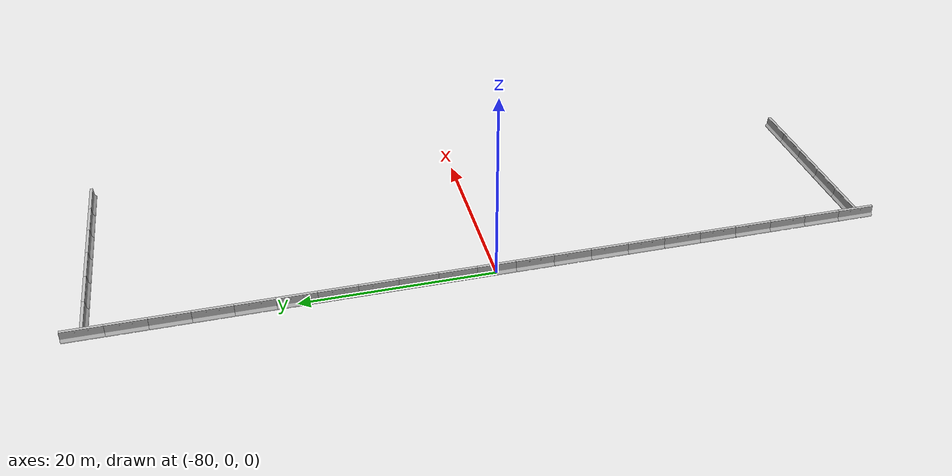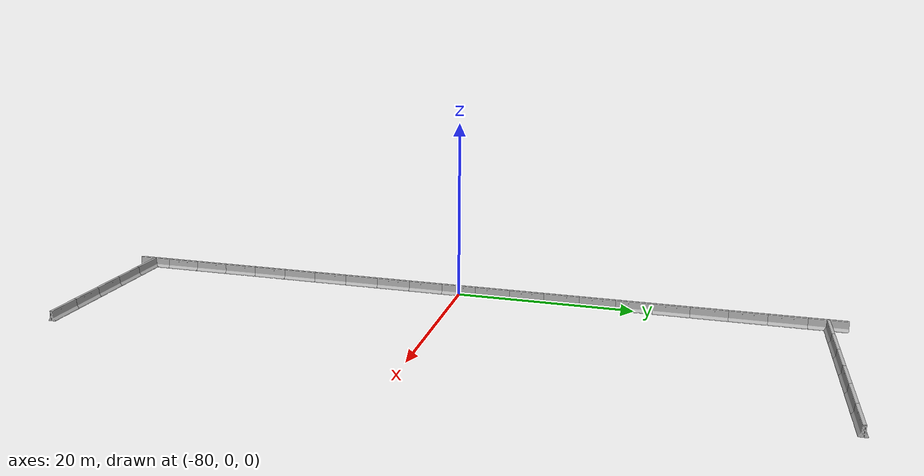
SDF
<sdf version="1.4">
 <world name="default">
  <include><uri>model://sun</uri></include>
  <model name="jersey_barrier_44">
   <pose>-58 40 0 0 0 0</pose>
   <static>1</static>
   <link name="link">
    <visual name="visual">
     <geometry><mesh><uri>model://jersey_barrier/meshes/jersey_barrier.dae</uri></mesh></geometry>
    </visual>
    <collision name="upright">
     <pose>0 0 0.5715 0 -0 0</pose>
     <geometry><box><size>4.06542 0.3063 1.143</size></box></geometry>
    </collision>
    <collision name="base">
     <pose>0 0 0.032258 0 -0 0</pose>
     <geometry><box><size>4.06542 0.8107 0.064516</size></box></geometry>
    </collision>
    <collision name="base2">
     <pose>0 0 0.1 0 -0 0</pose>
     <geometry><box><size>4.06542 0.65 0.1</size></box></geometry>
    </collision>
    <collision name="base3">
     <pose>0 0 0.2 0 -0 0</pose>
     <geometry><box><size>4.06542 0.5 0.1</size></box></geometry>
    </collision>
    <collision name="left-angle">
     <pose>0 -0.224 0.2401 0.9 -0 0</pose>
     <geometry><box><size>4.06542 0.5 0.064516</size></box></geometry>
    </collision>
    <collision name="right-angle">
     <pose>0 0.224 0.2401 -0.9 0 0</pose>
     <geometry><box><size>4.06542 0.5 0.064516</size></box></geometry>
    </collision>
    <velocity_decay><linear>0</linear><angular>0</angular></velocity_decay>
   </link>
   <pose>2.45495 0 0 0 -0 0</pose>
  </model>
  <model name="jersey_barrier_45">
   <pose>-62 40 0 0 0 0</pose>
   <static>1</static>
   <link name="link">
    <visual name="visual">
     <geometry><mesh><uri>model://jersey_barrier/meshes/jersey_barrier.dae</uri></mesh></geometry>
    </visual>
    <collision name="upright">
     <pose>0 0 0.5715 0 -0 0</pose>
     <geometry><box><size>4.06542 0.3063 1.143</size></box></geometry>
    </collision>
    <collision name="base">
     <pose>0 0 0.032258 0 -0 0</pose>
     <geometry><box><size>4.06542 0.8107 0.064516</size></box></geometry>
    </collision>
    <collision name="base2">
     <pose>0 0 0.1 0 -0 0</pose>
     <geometry><box><size>4.06542 0.65 0.1</size></box></geometry>
    </collision>
    <collision name="base3">
     <pose>0 0 0.2 0 -0 0</pose>
     <geometry><box><size>4.06542 0.5 0.1</size></box></geometry>
    </collision>
    <collision name="left-angle">
     <pose>0 -0.224 0.2401 0.9 -0 0</pose>
     <geometry><box><size>4.06542 0.5 0.064516</size></box></geometry>
    </collision>
    <collision name="right-angle">
     <pose>0 0.224 0.2401 -0.9 0 0</pose>
     <geometry><box><size>4.06542 0.5 0.064516</size></box></geometry>
    </collision>
    <velocity_decay><linear>0</linear><angular>0</angular></velocity_decay>
   </link>
   <pose>-10 -2 0 0 -0 0</pose>
  </model>
  <model name="jersey_barrier_46">
   <pose>-66 40 0 0 0 0</pose>
   <static>1</static>
   <link name="link">
    <visual name="visual">
     <geometry><mesh><uri>model://jersey_barrier/meshes/jersey_barrier.dae</uri></mesh></geometry>
    </visual>
    <collision name="upright">
     <pose>0 0 0.5715 0 -0 0</pose>
     <geometry><box><size>4.06542 0.3063 1.143</size></box></geometry>
    </collision>
    <collision name="base">
     <pose>0 0 0.032258 0 -0 0</pose>
     <geometry><box><size>4.06542 0.8107 0.064516</size></box></geometry>
    </collision>
    <collision name="base2">
     <pose>0 0 0.1 0 -0 0</pose>
     <geometry><box><size>4.06542 0.65 0.1</size></box></geometry>
    </collision>
    <collision name="base3">
     <pose>0 0 0.2 0 -0 0</pose>
     <geometry><box><size>4.06542 0.5 0.1</size></box></geometry>
    </collision>
    <collision name="left-angle">
     <pose>0 -0.224 0.2401 0.9 -0 0</pose>
     <geometry><box><size>4.06542 0.5 0.064516</size></box></geometry>
    </collision>
    <collision name="right-angle">
     <pose>0 0.224 0.2401 -0.9 0 0</pose>
     <geometry><box><size>4.06542 0.5 0.064516</size></box></geometry>
    </collision>
    <velocity_decay><linear>0</linear><angular>0</angular></velocity_decay>
   </link>
   <pose>-9.55113 3 0 0 -0 0</pose>
  </model>
  <model name="jersey_barrier_47">
   <pose>-70 40 0 0 0 0</pose>
   <static>1</static>
   <link name="link">
    <visual name="visual">
     <geometry><mesh><uri>model://jersey_barrier/meshes/jersey_barrier.dae</uri></mesh></geometry>
    </visual>
    <collision name="upright">
     <pose>0 0 0.5715 0 -0 0</pose>
     <geometry><box><size>4.06542 0.3063 1.143</size></box></geometry>
    </collision>
    <collision name="base">
     <pose>0 0 0.032258 0 -0 0</pose>
     <geometry><box><size>4.06542 0.8107 0.064516</size></box></geometry>
    </collision>
    <collision name="base2">
     <pose>0 0 0.1 0 -0 0</pose>
     <geometry><box><size>4.06542 0.65 0.1</size></box></geometry>
    </collision>
    <collision name="base3">
     <pose>0 0 0.2 0 -0 0</pose>
     <geometry><box><size>4.06542 0.5 0.1</size></box></geometry>
    </collision>
    <collision name="left-angle">
     <pose>0 -0.224 0.2401 0.9 -0 0</pose>
     <geometry><box><size>4.06542 0.5 0.064516</size></box></geometry>
    </collision>
    <collision name="right-angle">
     <pose>0 0.224 0.2401 -0.9 0 0</pose>
     <geometry><box><size>4.06542 0.5 0.064516</size></box></geometry>
    </collision>
    <velocity_decay><linear>0</linear><angular>0</angular></velocity_decay>
   </link>
   <pose>9 -8 0 0 -0 0</pose>
  </model>
  <model name="jersey_barrier_48">
   <pose>-74 40 0 0 0 0</pose>
   <static>1</static>
   <link name="link">
    <visual name="visual">
     <geometry><mesh><uri>model://jersey_barrier/meshes/jersey_barrier.dae</uri></mesh></geometry>
    </visual>
    <collision name="upright">
     <pose>0 0 0.5715 0 -0 0</pose>
     <geometry><box><size>4.06542 0.3063 1.143</size></box></geometry>
    </collision>
    <collision name="base">
     <pose>0 0 0.032258 0 -0 0</pose>
     <geometry><box><size>4.06542 0.8107 0.064516</size></box></geometry>
    </collision>
    <collision name="base2">
     <pose>0 0 0.1 0 -0 0</pose>
     <geometry><box><size>4.06542 0.65 0.1</size></box></geometry>
    </collision>
    <collision name="base3">
     <pose>0 0 0.2 0 -0 0</pose>
     <geometry><box><size>4.06542 0.5 0.1</size></box></geometry>
    </collision>
    <collision name="left-angle">
     <pose>0 -0.224 0.2401 0.9 -0 0</pose>
     <geometry><box><size>4.06542 0.5 0.064516</size></box></geometry>
    </collision>
    <collision name="right-angle">
     <pose>0 0.224 0.2401 -0.9 0 0</pose>
     <geometry><box><size>4.06542 0.5 0.064516</size></box></geometry>
    </collision>
    <velocity_decay><linear>0</linear><angular>0</angular></velocity_decay>
   </link>
   <pose>10 7 0 0 -0 0</pose>
  </model>
  <model name="jersey_barrier_49">
   <pose>-78 40 0 0 0 0</pose>
   <static>1</static>
   <link name="link">
    <visual name="visual">
     <geometry><mesh><uri>model://jersey_barrier/meshes/jersey_barrier.dae</uri></mesh></geometry>
    </visual>
    <collision name="upright">
     <pose>0 0 0.5715 0 -0 0</pose>
     <geometry><box><size>4.06542 0.3063 1.143</size></box></geometry>
    </collision>
    <collision name="base">
     <pose>0 0 0.032258 0 -0 0</pose>
     <geometry><box><size>4.06542 0.8107 0.064516</size></box></geometry>
    </collision>
    <collision name="base2">
     <pose>0 0 0.1 0 -0 0</pose>
     <geometry><box><size>4.06542 0.65 0.1</size></box></geometry>
    </collision>
    <collision name="base3">
     <pose>0 0 0.2 0 -0 0</pose>
     <geometry><box><size>4.06542 0.5 0.1</size></box></geometry>
    </collision>
    <collision name="left-angle">
     <pose>0 -0.224 0.2401 0.9 -0 0</pose>
     <geometry><box><size>4.06542 0.5 0.064516</size></box></geometry>
    </collision>
    <collision name="right-angle">
     <pose>0 0.224 0.2401 -0.9 0 0</pose>
     <geometry><box><size>4.06542 0.5 0.064516</size></box></geometry>
    </collision>
    <velocity_decay><linear>0</linear><angular>0</angular></velocity_decay>
   </link>
   <pose>-9 7.4858 0 0 -0 0</pose>
  </model>
  <model name="jersey_barrier_50">
   <pose>-80 0 0 0 0 1.57079632679</pose>
   <static>1</static>
   <link name="link">
    <visual name="visual">
     <geometry><mesh><uri>model://jersey_barrier/meshes/jersey_barrier.dae</uri></mesh></geometry>
    </visual>
    <collision name="upright">
     <pose>0 0 0.5715 0 -0 0</pose>
     <geometry><box><size>4.06542 0.3063 1.143</size></box></geometry>
    </collision>
    <collision name="base">
     <pose>0 0 0.032258 0 -0 0</pose>
     <geometry><box><size>4.06542 0.8107 0.064516</size></box></geometry>
    </collision>
    <collision name="base2">
     <pose>0 0 0.1 0 -0 0</pose>
     <geometry><box><size>4.06542 0.65 0.1</size></box></geometry>
    </collision>
    <collision name="base3">
     <pose>0 0 0.2 0 -0 0</pose>
     <geometry><box><size>4.06542 0.5 0.1</size></box></geometry>
    </collision>
    <collision name="left-angle">
     <pose>0 -0.224 0.2401 0.9 -0 0</pose>
     <geometry><box><size>4.06542 0.5 0.064516</size></box></geometry>
    </collision>
    <collision name="right-angle">
     <pose>0 0.224 0.2401 -0.9 0 0</pose>
     <geometry><box><size>4.06542 0.5 0.064516</size></box></geometry>
    </collision>
    <velocity_decay><linear>0</linear><angular>0</angular></velocity_decay>
   </link>
   <pose>-8 -10 0 0 -0 0</pose>
  </model>
  <model name="jersey_barrier_51">
   <pose>-80 4 0 0 0 1.57079632679</pose>
   <static>1</static>
   <link name="link">
    <visual name="visual">
     <geometry><mesh><uri>model://jersey_barrier/meshes/jersey_barrier.dae</uri></mesh></geometry>
    </visual>
    <collision name="upright">
     <pose>0 0 0.5715 0 -0 0</pose>
     <geometry><box><size>4.06542 0.3063 1.143</size></box></geometry>
    </collision>
    <collision name="base">
     <pose>0 0 0.032258 0 -0 0</pose>
     <geometry><box><size>4.06542 0.8107 0.064516</size></box></geometry>
    </collision>
    <collision name="base2">
     <pose>0 0 0.1 0 -0 0</pose>
     <geometry><box><size>4.06542 0.65 0.1</size></box></geometry>
    </collision>
    <collision name="base3">
     <pose>0 0 0.2 0 -0 0</pose>
     <geometry><box><size>4.06542 0.5 0.1</size></box></geometry>
    </collision>
    <collision name="left-angle">
     <pose>0 -0.224 0.2401 0.9 -0 0</pose>
     <geometry><box><size>4.06542 0.5 0.064516</size></box></geometry>
    </collision>
    <collision name="right-angle">
     <pose>0 0.224 0.2401 -0.9 0 0</pose>
     <geometry><box><size>4.06542 0.5 0.064516</size></box></geometry>
    </collision>
    <velocity_decay><linear>0</linear><angular>0</angular></velocity_decay>
   </link>
   <pose>-3 -10 0 0 -0 0</pose>
  </model>
  <model name="jersey_barrier_52">
   <pose>-80 8 0 0 0 1.57079632679</pose>
   <static>1</static>
   <link name="link">
    <visual name="visual">
     <geometry><mesh><uri>model://jersey_barrier/meshes/jersey_barrier.dae</uri></mesh></geometry>
    </visual>
    <collision name="upright">
     <pose>0 0 0.5715 0 -0 0</pose>
     <geometry><box><size>4.06542 0.3063 1.143</size></box></geometry>
    </collision>
    <collision name="base">
     <pose>0 0 0.032258 0 -0 0</pose>
     <geometry><box><size>4.06542 0.8107 0.064516</size></box></geometry>
    </collision>
    <collision name="base2">
     <pose>0 0 0.1 0 -0 0</pose>
     <geometry><box><size>4.06542 0.65 0.1</size></box></geometry>
    </collision>
    <collision name="base3">
     <pose>0 0 0.2 0 -0 0</pose>
     <geometry><box><size>4.06542 0.5 0.1</size></box></geometry>
    </collision>
    <collision name="left-angle">
     <pose>0 -0.224 0.2401 0.9 -0 0</pose>
     <geometry><box><size>4.06542 0.5 0.064516</size></box></geometry>
    </collision>
    <collision name="right-angle">
     <pose>0 0.224 0.2401 -0.9 0 0</pose>
     <geometry><box><size>4.06542 0.5 0.064516</size></box></geometry>
    </collision>
    <velocity_decay><linear>0</linear><angular>0</angular></velocity_decay>
   </link>
   <pose>2 -10 0 0 -0 0</pose>
  </model>
  <model name="jersey_barrier_53">
   <pose>-80 12 0 0 0 1.57079632679</pose>
   <static>1</static>
   <link name="link">
    <visual name="visual">
     <geometry><mesh><uri>model://jersey_barrier/meshes/jersey_barrier.dae</uri></mesh></geometry>
    </visual>
    <collision name="upright">
     <pose>0 0 0.5715 0 -0 0</pose>
     <geometry><box><size>4.06542 0.3063 1.143</size></box></geometry>
    </collision>
    <collision name="base">
     <pose>0 0 0.032258 0 -0 0</pose>
     <geometry><box><size>4.06542 0.8107 0.064516</size></box></geometry>
    </collision>
    <collision name="base2">
     <pose>0 0 0.1 0 -0 0</pose>
     <geometry><box><size>4.06542 0.65 0.1</size></box></geometry>
    </collision>
    <collision name="base3">
     <pose>0 0 0.2 0 -0 0</pose>
     <geometry><box><size>4.06542 0.5 0.1</size></box></geometry>
    </collision>
    <collision name="left-angle">
     <pose>0 -0.224 0.2401 0.9 -0 0</pose>
     <geometry><box><size>4.06542 0.5 0.064516</size></box></geometry>
    </collision>
    <collision name="right-angle">
     <pose>0 0.224 0.2401 -0.9 0 0</pose>
     <geometry><box><size>4.06542 0.5 0.064516</size></box></geometry>
    </collision>
    <velocity_decay><linear>0</linear><angular>0</angular></velocity_decay>
   </link>
   <pose>7 -10 0 0 -0 0</pose>
  </model>
  <model name="jersey_barrier_54">
   <pose>-80 16 0 0 0 1.57079632679</pose>
   <static>1</static>
   <link name="link">
    <visual name="visual">
     <geometry><mesh><uri>model://jersey_barrier/meshes/jersey_barrier.dae</uri></mesh></geometry>
    </visual>
    <collision name="upright">
     <pose>0 0 0.5715 0 -0 0</pose>
     <geometry><box><size>4.06542 0.3063 1.143</size></box></geometry>
    </collision>
    <collision name="base">
     <pose>0 0 0.032258 0 -0 0</pose>
     <geometry><box><size>4.06542 0.8107 0.064516</size></box></geometry>
    </collision>
    <collision name="base2">
     <pose>0 0 0.1 0 -0 0</pose>
     <geometry><box><size>4.06542 0.65 0.1</size></box></geometry>
    </collision>
    <collision name="base3">
     <pose>0 0 0.2 0 -0 0</pose>
     <geometry><box><size>4.06542 0.5 0.1</size></box></geometry>
    </collision>
    <collision name="left-angle">
     <pose>0 -0.224 0.2401 0.9 -0 0</pose>
     <geometry><box><size>4.06542 0.5 0.064516</size></box></geometry>
    </collision>
    <collision name="right-angle">
     <pose>0 0.224 0.2401 -0.9 0 0</pose>
     <geometry><box><size>4.06542 0.5 0.064516</size></box></geometry>
    </collision>
    <velocity_decay><linear>0</linear><angular>0</angular></velocity_decay>
   </link>
   <pose>-7.50675 10 0 0 -0 0</pose>
  </model>
  <model name="jersey_barrier_55">
   <pose>-80 20 0 0 0 1.57079632679</pose>
   <static>1</static>
   <link name="link">
    <visual name="visual">
     <geometry><mesh><uri>model://jersey_barrier/meshes/jersey_barrier.dae</uri></mesh></geometry>
    </visual>
    <collision name="upright">
     <pose>0 0 0.5715 0 -0 0</pose>
     <geometry><box><size>4.06542 0.3063 1.143</size></box></geometry>
    </collision>
    <collision name="base">
     <pose>0 0 0.032258 0 -0 0</pose>
     <geometry><box><size>4.06542 0.8107 0.064516</size></box></geometry>
    </collision>
    <collision name="base2">
     <pose>0 0 0.1 0 -0 0</pose>
     <geometry><box><size>4.06542 0.65 0.1</size></box></geometry>
    </collision>
    <collision name="base3">
     <pose>0 0 0.2 0 -0 0</pose>
     <geometry><box><size>4.06542 0.5 0.1</size></box></geometry>
    </collision>
    <collision name="left-angle">
     <pose>0 -0.224 0.2401 0.9 -0 0</pose>
     <geometry><box><size>4.06542 0.5 0.064516</size></box></geometry>
    </collision>
    <collision name="right-angle">
     <pose>0 0.224 0.2401 -0.9 0 0</pose>
     <geometry><box><size>4.06542 0.5 0.064516</size></box></geometry>
    </collision>
    <velocity_decay><linear>0</linear><angular>0</angular></velocity_decay>
   </link>
   <pose>-2 10 0 0 -0 0</pose>
  </model>
  <model name="jersey_barrier_56">
   <pose>-80 24 0 0 0 1.57079632679</pose>
   <static>1</static>
   <link name="link">
    <visual name="visual">
     <geometry><mesh><uri>model://jersey_barrier/meshes/jersey_barrier.dae</uri></mesh></geometry>
    </visual>
    <collision name="upright">
     <pose>0 0 0.5715 0 -0 0</pose>
     <geometry><box><size>4.06542 0.3063 1.143</size></box></geometry>
    </collision>
    <collision name="base">
     <pose>0 0 0.032258 0 -0 0</pose>
     <geometry><box><size>4.06542 0.8107 0.064516</size></box></geometry>
    </collision>
    <collision name="base2">
     <pose>0 0 0.1 0 -0 0</pose>
     <geometry><box><size>4.06542 0.65 0.1</size></box></geometry>
    </collision>
    <collision name="base3">
     <pose>0 0 0.2 0 -0 0</pose>
     <geometry><box><size>4.06542 0.5 0.1</size></box></geometry>
    </collision>
    <collision name="left-angle">
     <pose>0 -0.224 0.2401 0.9 -0 0</pose>
     <geometry><box><size>4.06542 0.5 0.064516</size></box></geometry>
    </collision>
    <collision name="right-angle">
     <pose>0 0.224 0.2401 -0.9 0 0</pose>
     <geometry><box><size>4.06542 0.5 0.064516</size></box></geometry>
    </collision>
    <velocity_decay><linear>0</linear><angular>0</angular></velocity_decay>
   </link>
   <pose>3 10 0 0 -0 0</pose>
  </model>
  <model name="jersey_barrier_57">
   <pose>-80 28 0 0 0 1.57079632679</pose>
   <static>1</static>
   <link name="link">
    <visual name="visual">
     <geometry><mesh><uri>model://jersey_barrier/meshes/jersey_barrier.dae</uri></mesh></geometry>
    </visual>
    <collision name="upright">
     <pose>0 0 0.5715 0 -0 0</pose>
     <geometry><box><size>4.06542 0.3063 1.143</size></box></geometry>
    </collision>
    <collision name="base">
     <pose>0 0 0.032258 0 -0 0</pose>
     <geometry><box><size>4.06542 0.8107 0.064516</size></box></geometry>
    </collision>
    <collision name="base2">
     <pose>0 0 0.1 0 -0 0</pose>
     <geometry><box><size>4.06542 0.65 0.1</size></box></geometry>
    </collision>
    <collision name="base3">
     <pose>0 0 0.2 0 -0 0</pose>
     <geometry><box><size>4.06542 0.5 0.1</size></box></geometry>
    </collision>
    <collision name="left-angle">
     <pose>0 -0.224 0.2401 0.9 -0 0</pose>
     <geometry><box><size>4.06542 0.5 0.064516</size></box></geometry>
    </collision>
    <collision name="right-angle">
     <pose>0 0.224 0.2401 -0.9 0 0</pose>
     <geometry><box><size>4.06542 0.5 0.064516</size></box></geometry>
    </collision>
    <velocity_decay><linear>0</linear><angular>0</angular></velocity_decay>
   </link>
   <pose>8 10 0 0 -0 0</pose>
  </model>
  <model name="jersey_barrier_58">
   <pose>-80 32 0 0 0 1.57079632679</pose>
   <static>1</static>
   <link name="link">
    <visual name="visual">
     <geometry><mesh><uri>model://jersey_barrier/meshes/jersey_barrier.dae</uri></mesh></geometry>
    </visual>
    <collision name="upright">
     <pose>0 0 0.5715 0 -0 0</pose>
     <geometry><box><size>4.06542 0.3063 1.143</size></box></geometry>
    </collision>
    <collision name="base">
     <pose>0 0 0.032258 0 -0 0</pose>
     <geometry><box><size>4.06542 0.8107 0.064516</size></box></geometry>
    </collision>
    <collision name="base2">
     <pose>0 0 0.1 0 -0 0</pose>
     <geometry><box><size>4.06542 0.65 0.1</size></box></geometry>
    </collision>
    <collision name="base3">
     <pose>0 0 0.2 0 -0 0</pose>
     <geometry><box><size>4.06542 0.5 0.1</size></box></geometry>
    </collision>
    <collision name="left-angle">
     <pose>0 -0.224 0.2401 0.9 -0 0</pose>
     <geometry><box><size>4.06542 0.5 0.064516</size></box></geometry>
    </collision>
    <collision name="right-angle">
     <pose>0 0.224 0.2401 -0.9 0 0</pose>
     <geometry><box><size>4.06542 0.5 0.064516</size></box></geometry>
    </collision>
    <velocity_decay><linear>0</linear><angular>0</angular></velocity_decay>
   </link>
   <pose>9 -4 0 0 -0 0</pose>
  </model>
  <model name="jersey_barrier_59">
   <pose>-80 36 0 0 0 1.57079632679</pose>
   <static>1</static>
   <link name="link">
    <visual name="visual">
     <geometry><mesh><uri>model://jersey_barrier/meshes/jersey_barrier.dae</uri></mesh></geometry>
    </visual>
    <collision name="upright">
     <pose>0 0 0.5715 0 -0 0</pose>
     <geometry><box><size>4.06542 0.3063 1.143</size></box></geometry>
    </collision>
    <collision name="base">
     <pose>0 0 0.032258 0 -0 0</pose>
     <geometry><box><size>4.06542 0.8107 0.064516</size></box></geometry>
    </collision>
    <collision name="base2">
     <pose>0 0 0.1 0 -0 0</pose>
     <geometry><box><size>4.06542 0.65 0.1</size></box></geometry>
    </collision>
    <collision name="base3">
     <pose>0 0 0.2 0 -0 0</pose>
     <geometry><box><size>4.06542 0.5 0.1</size></box></geometry>
    </collision>
    <collision name="left-angle">
     <pose>0 -0.224 0.2401 0.9 -0 0</pose>
     <geometry><box><size>4.06542 0.5 0.064516</size></box></geometry>
    </collision>
    <collision name="right-angle">
     <pose>0 0.224 0.2401 -0.9 0 0</pose>
     <geometry><box><size>4.06542 0.5 0.064516</size></box></geometry>
    </collision>
    <velocity_decay><linear>0</linear><angular>0</angular></velocity_decay>
   </link>
   <pose>9 3 0 0 -0 0</pose>
  </model>
  <model name="jersey_barrier_60">
   <pose>-80 40 0 0 0 1.57079632679</pose>
   <static>1</static>
   <link name="link">
    <visual name="visual">
     <geometry><mesh><uri>model://jersey_barrier/meshes/jersey_barrier.dae</uri></mesh></geometry>
    </visual>
    <collision name="upright">
     <pose>0 0 0.5715 0 -0 0</pose>
     <geometry><box><size>4.06542 0.3063 1.143</size></box></geometry>
    </collision>
    <collision name="base">
     <pose>0 0 0.032258 0 -0 0</pose>
     <geometry><box><size>4.06542 0.8107 0.064516</size></box></geometry>
    </collision>
    <collision name="base2">
     <pose>0 0 0.1 0 -0 0</pose>
     <geometry><box><size>4.06542 0.65 0.1</size></box></geometry>
    </collision>
    <collision name="base3">
     <pose>0 0 0.2 0 -0 0</pose>
     <geometry><box><size>4.06542 0.5 0.1</size></box></geometry>
    </collision>
    <collision name="left-angle">
     <pose>0 -0.224 0.2401 0.9 -0 0</pose>
     <geometry><box><size>4.06542 0.5 0.064516</size></box></geometry>
    </collision>
    <collision name="right-angle">
     <pose>0 0.224 0.2401 -0.9 0 0</pose>
     <geometry><box><size>4.06542 0.5 0.064516</size></box></geometry>
    </collision>
    <velocity_decay><linear>0</linear><angular>0</angular></velocity_decay>
   </link>
   <pose>-9 -6.56962 0 0 -0 0</pose>
  </model>
  <model name="jersey_barrier_61">
   <pose>-80 -4 0 0 0 1.57079632679</pose>
   <static>1</static>
   <link name="link">
    <visual name="visual">
     <geometry><mesh><uri>model://jersey_barrier/meshes/jersey_barrier.dae</uri></mesh></geometry>
    </visual>
    <collision name="upright">
     <pose>0 0 0.5715 0 -0 0</pose>
     <geometry><box><size>4.06542 0.3063 1.143</size></box></geometry>
    </collision>
    <collision name="base">
     <pose>0 0 0.032258 0 -0 0</pose>
     <geometry><box><size>4.06542 0.8107 0.064516</size></box></geometry>
    </collision>
    <collision name="base2">
     <pose>0 0 0.1 0 -0 0</pose>
     <geometry><box><size>4.06542 0.65 0.1</size></box></geometry>
    </collision>
    <collision name="base3">
     <pose>0 0 0.2 0 -0 0</pose>
     <geometry><box><size>4.06542 0.5 0.1</size></box></geometry>
    </collision>
    <collision name="left-angle">
     <pose>0 -0.224 0.2401 0.9 -0 0</pose>
     <geometry><box><size>4.06542 0.5 0.064516</size></box></geometry>
    </collision>
    <collision name="right-angle">
     <pose>0 0.224 0.2401 -0.9 0 0</pose>
     <geometry><box><size>4.06542 0.5 0.064516</size></box></geometry>
    </collision>
    <velocity_decay><linear>0</linear><angular>0</angular></velocity_decay>
   </link>
   <pose>-3 -10 0 0 -0 0</pose>
  </model>
  <model name="jersey_barrier_62">
   <pose>-80 -8 0 0 0 1.57079632679</pose>
   <static>1</static>
   <link name="link">
    <visual name="visual">
     <geometry><mesh><uri>model://jersey_barrier/meshes/jersey_barrier.dae</uri></mesh></geometry>
    </visual>
    <collision name="upright">
     <pose>0 0 0.5715 0 -0 0</pose>
     <geometry><box><size>4.06542 0.3063 1.143</size></box></geometry>
    </collision>
    <collision name="base">
     <pose>0 0 0.032258 0 -0 0</pose>
     <geometry><box><size>4.06542 0.8107 0.064516</size></box></geometry>
    </collision>
    <collision name="base2">
     <pose>0 0 0.1 0 -0 0</pose>
     <geometry><box><size>4.06542 0.65 0.1</size></box></geometry>
    </collision>
    <collision name="base3">
     <pose>0 0 0.2 0 -0 0</pose>
     <geometry><box><size>4.06542 0.5 0.1</size></box></geometry>
    </collision>
    <collision name="left-angle">
     <pose>0 -0.224 0.2401 0.9 -0 0</pose>
     <geometry><box><size>4.06542 0.5 0.064516</size></box></geometry>
    </collision>
    <collision name="right-angle">
     <pose>0 0.224 0.2401 -0.9 0 0</pose>
     <geometry><box><size>4.06542 0.5 0.064516</size></box></geometry>
    </collision>
    <velocity_decay><linear>0</linear><angular>0</angular></velocity_decay>
   </link>
   <pose>2 -10 0 0 -0 0</pose>
  </model>
  <model name="jersey_barrier_63">
   <pose>-80 -12 0 0 0 1.57079632679</pose>
   <static>1</static>
   <link name="link">
    <visual name="visual">
     <geometry><mesh><uri>model://jersey_barrier/meshes/jersey_barrier.dae</uri></mesh></geometry>
    </visual>
    <collision name="upright">
     <pose>0 0 0.5715 0 -0 0</pose>
     <geometry><box><size>4.06542 0.3063 1.143</size></box></geometry>
    </collision>
    <collision name="base">
     <pose>0 0 0.032258 0 -0 0</pose>
     <geometry><box><size>4.06542 0.8107 0.064516</size></box></geometry>
    </collision>
    <collision name="base2">
     <pose>0 0 0.1 0 -0 0</pose>
     <geometry><box><size>4.06542 0.65 0.1</size></box></geometry>
    </collision>
    <collision name="base3">
     <pose>0 0 0.2 0 -0 0</pose>
     <geometry><box><size>4.06542 0.5 0.1</size></box></geometry>
    </collision>
    <collision name="left-angle">
     <pose>0 -0.224 0.2401 0.9 -0 0</pose>
     <geometry><box><size>4.06542 0.5 0.064516</size></box></geometry>
    </collision>
    <collision name="right-angle">
     <pose>0 0.224 0.2401 -0.9 0 0</pose>
     <geometry><box><size>4.06542 0.5 0.064516</size></box></geometry>
    </collision>
    <velocity_decay><linear>0</linear><angular>0</angular></velocity_decay>
   </link>
   <pose>7 -10 0 0 -0 0</pose>
  </model>
  <model name="jersey_barrier_64">
   <pose>-80 -16 0 0 0 1.57079632679</pose>
   <static>1</static>
   <link name="link">
    <visual name="visual">
     <geometry><mesh><uri>model://jersey_barrier/meshes/jersey_barrier.dae</uri></mesh></geometry>
    </visual>
    <collision name="upright">
     <pose>0 0 0.5715 0 -0 0</pose>
     <geometry><box><size>4.06542 0.3063 1.143</size></box></geometry>
    </collision>
    <collision name="base">
     <pose>0 0 0.032258 0 -0 0</pose>
     <geometry><box><size>4.06542 0.8107 0.064516</size></box></geometry>
    </collision>
    <collision name="base2">
     <pose>0 0 0.1 0 -0 0</pose>
     <geometry><box><size>4.06542 0.65 0.1</size></box></geometry>
    </collision>
    <collision name="base3">
     <pose>0 0 0.2 0 -0 0</pose>
     <geometry><box><size>4.06542 0.5 0.1</size></box></geometry>
    </collision>
    <collision name="left-angle">
     <pose>0 -0.224 0.2401 0.9 -0 0</pose>
     <geometry><box><size>4.06542 0.5 0.064516</size></box></geometry>
    </collision>
    <collision name="right-angle">
     <pose>0 0.224 0.2401 -0.9 0 0</pose>
     <geometry><box><size>4.06542 0.5 0.064516</size></box></geometry>
    </collision>
    <velocity_decay><linear>0</linear><angular>0</angular></velocity_decay>
   </link>
   <pose>-7.50675 10 0 0 -0 0</pose>
  </model>
  <model name="jersey_barrier_65">
   <pose>-80 -20 0 0 0 1.57079632679</pose>
   <static>1</static>
   <link name="link">
    <visual name="visual">
     <geometry><mesh><uri>model://jersey_barrier/meshes/jersey_barrier.dae</uri></mesh></geometry>
    </visual>
    <collision name="upright">
     <pose>0 0 0.5715 0 -0 0</pose>
     <geometry><box><size>4.06542 0.3063 1.143</size></box></geometry>
    </collision>
    <collision name="base">
     <pose>0 0 0.032258 0 -0 0</pose>
     <geometry><box><size>4.06542 0.8107 0.064516</size></box></geometry>
    </collision>
    <collision name="base2">
     <pose>0 0 0.1 0 -0 0</pose>
     <geometry><box><size>4.06542 0.65 0.1</size></box></geometry>
    </collision>
    <collision name="base3">
     <pose>0 0 0.2 0 -0 0</pose>
     <geometry><box><size>4.06542 0.5 0.1</size></box></geometry>
    </collision>
    <collision name="left-angle">
     <pose>0 -0.224 0.2401 0.9 -0 0</pose>
     <geometry><box><size>4.06542 0.5 0.064516</size></box></geometry>
    </collision>
    <collision name="right-angle">
     <pose>0 0.224 0.2401 -0.9 0 0</pose>
     <geometry><box><size>4.06542 0.5 0.064516</size></box></geometry>
    </collision>
    <velocity_decay><linear>0</linear><angular>0</angular></velocity_decay>
   </link>
   <pose>-2 10 0 0 -0 0</pose>
  </model>
  <model name="jersey_barrier_66">
   <pose>-80 -24 0 0 0 1.57079632679</pose>
   <static>1</static>
   <link name="link">
    <visual name="visual">
     <geometry><mesh><uri>model://jersey_barrier/meshes/jersey_barrier.dae</uri></mesh></geometry>
    </visual>
    <collision name="upright">
     <pose>0 0 0.5715 0 -0 0</pose>
     <geometry><box><size>4.06542 0.3063 1.143</size></box></geometry>
    </collision>
    <collision name="base">
     <pose>0 0 0.032258 0 -0 0</pose>
     <geometry><box><size>4.06542 0.8107 0.064516</size></box></geometry>
    </collision>
    <collision name="base2">
     <pose>0 0 0.1 0 -0 0</pose>
     <geometry><box><size>4.06542 0.65 0.1</size></box></geometry>
    </collision>
    <collision name="base3">
     <pose>0 0 0.2 0 -0 0</pose>
     <geometry><box><size>4.06542 0.5 0.1</size></box></geometry>
    </collision>
    <collision name="left-angle">
     <pose>0 -0.224 0.2401 0.9 -0 0</pose>
     <geometry><box><size>4.06542 0.5 0.064516</size></box></geometry>
    </collision>
    <collision name="right-angle">
     <pose>0 0.224 0.2401 -0.9 0 0</pose>
     <geometry><box><size>4.06542 0.5 0.064516</size></box></geometry>
    </collision>
    <velocity_decay><linear>0</linear><angular>0</angular></velocity_decay>
   </link>
   <pose>3 10 0 0 -0 0</pose>
  </model>
  <model name="jersey_barrier_67">
   <pose>-80 -28 0 0 0 1.57079632679</pose>
   <static>1</static>
   <link name="link">
    <visual name="visual">
     <geometry><mesh><uri>model://jersey_barrier/meshes/jersey_barrier.dae</uri></mesh></geometry>
    </visual>
    <collision name="upright">
     <pose>0 0 0.5715 0 -0 0</pose>
     <geometry><box><size>4.06542 0.3063 1.143</size></box></geometry>
    </collision>
    <collision name="base">
     <pose>0 0 0.032258 0 -0 0</pose>
     <geometry><box><size>4.06542 0.8107 0.064516</size></box></geometry>
    </collision>
    <collision name="base2">
     <pose>0 0 0.1 0 -0 0</pose>
     <geometry><box><size>4.06542 0.65 0.1</size></box></geometry>
    </collision>
    <collision name="base3">
     <pose>0 0 0.2 0 -0 0</pose>
     <geometry><box><size>4.06542 0.5 0.1</size></box></geometry>
    </collision>
    <collision name="left-angle">
     <pose>0 -0.224 0.2401 0.9 -0 0</pose>
     <geometry><box><size>4.06542 0.5 0.064516</size></box></geometry>
    </collision>
    <collision name="right-angle">
     <pose>0 0.224 0.2401 -0.9 0 0</pose>
     <geometry><box><size>4.06542 0.5 0.064516</size></box></geometry>
    </collision>
    <velocity_decay><linear>0</linear><angular>0</angular></velocity_decay>
   </link>
   <pose>8 10 0 0 -0 0</pose>
  </model>
  <model name="jersey_barrier_68">
   <pose>-80 -32 0 0 0 1.57079632679</pose>
   <static>1</static>
   <link name="link">
    <visual name="visual">
     <geometry><mesh><uri>model://jersey_barrier/meshes/jersey_barrier.dae</uri></mesh></geometry>
    </visual>
    <collision name="upright">
     <pose>0 0 0.5715 0 -0 0</pose>
     <geometry><box><size>4.06542 0.3063 1.143</size></box></geometry>
    </collision>
    <collision name="base">
     <pose>0 0 0.032258 0 -0 0</pose>
     <geometry><box><size>4.06542 0.8107 0.064516</size></box></geometry>
    </collision>
    <collision name="base2">
     <pose>0 0 0.1 0 -0 0</pose>
     <geometry><box><size>4.06542 0.65 0.1</size></box></geometry>
    </collision>
    <collision name="base3">
     <pose>0 0 0.2 0 -0 0</pose>
     <geometry><box><size>4.06542 0.5 0.1</size></box></geometry>
    </collision>
    <collision name="left-angle">
     <pose>0 -0.224 0.2401 0.9 -0 0</pose>
     <geometry><box><size>4.06542 0.5 0.064516</size></box></geometry>
    </collision>
    <collision name="right-angle">
     <pose>0 0.224 0.2401 -0.9 0 0</pose>
     <geometry><box><size>4.06542 0.5 0.064516</size></box></geometry>
    </collision>
    <velocity_decay><linear>0</linear><angular>0</angular></velocity_decay>
   </link>
   <pose>9 -4 0 0 -0 0</pose>
  </model>
  <model name="jersey_barrier_69">
   <pose>-80 -36 0 0 0 1.57079632679</pose>
   <static>1</static>
   <link name="link">
    <visual name="visual">
     <geometry><mesh><uri>model://jersey_barrier/meshes/jersey_barrier.dae</uri></mesh></geometry>
    </visual>
    <collision name="upright">
     <pose>0 0 0.5715 0 -0 0</pose>
     <geometry><box><size>4.06542 0.3063 1.143</size></box></geometry>
    </collision>
    <collision name="base">
     <pose>0 0 0.032258 0 -0 0</pose>
     <geometry><box><size>4.06542 0.8107 0.064516</size></box></geometry>
    </collision>
    <collision name="base2">
     <pose>0 0 0.1 0 -0 0</pose>
     <geometry><box><size>4.06542 0.65 0.1</size></box></geometry>
    </collision>
    <collision name="base3">
     <pose>0 0 0.2 0 -0 0</pose>
     <geometry><box><size>4.06542 0.5 0.1</size></box></geometry>
    </collision>
    <collision name="left-angle">
     <pose>0 -0.224 0.2401 0.9 -0 0</pose>
     <geometry><box><size>4.06542 0.5 0.064516</size></box></geometry>
    </collision>
    <collision name="right-angle">
     <pose>0 0.224 0.2401 -0.9 0 0</pose>
     <geometry><box><size>4.06542 0.5 0.064516</size></box></geometry>
    </collision>
    <velocity_decay><linear>0</linear><angular>0</angular></velocity_decay>
   </link>
   <pose>9 3 0 0 -0 0</pose>
  </model>
  <model name="jersey_barrier_70">
   <pose>-80 -40 0 0 0 1.57079632679</pose>
   <static>1</static>
   <link name="link">
    <visual name="visual">
     <geometry><mesh><uri>model://jersey_barrier/meshes/jersey_barrier.dae</uri></mesh></geometry>
    </visual>
    <collision name="upright">
     <pose>0 0 0.5715 0 -0 0</pose>
     <geometry><box><size>4.06542 0.3063 1.143</size></box></geometry>
    </collision>
    <collision name="base">
     <pose>0 0 0.032258 0 -0 0</pose>
     <geometry><box><size>4.06542 0.8107 0.064516</size></box></geometry>
    </collision>
    <collision name="base2">
     <pose>0 0 0.1 0 -0 0</pose>
     <geometry><box><size>4.06542 0.65 0.1</size></box></geometry>
    </collision>
    <collision name="base3">
     <pose>0 0 0.2 0 -0 0</pose>
     <geometry><box><size>4.06542 0.5 0.1</size></box></geometry>
    </collision>
    <collision name="left-angle">
     <pose>0 -0.224 0.2401 0.9 -0 0</pose>
     <geometry><box><size>4.06542 0.5 0.064516</size></box></geometry>
    </collision>
    <collision name="right-angle">
     <pose>0 0.224 0.2401 -0.9 0 0</pose>
     <geometry><box><size>4.06542 0.5 0.064516</size></box></geometry>
    </collision>
    <velocity_decay><linear>0</linear><angular>0</angular></velocity_decay>
   </link>
   <pose>-9 -6.56962 0 0 -0 0</pose>
  </model>
  <model name="jersey_barrier_106">
   <pose>-62 -40 0 0 0 0</pose>
   <static>1</static>
   <link name="link">
    <visual name="visual">
     <geometry><mesh><uri>model://jersey_barrier/meshes/jersey_barrier.dae</uri></mesh></geometry>
    </visual>
    <collision name="upright">
     <pose>0 0 0.5715 0 -0 0</pose>
     <geometry><box><size>4.06542 0.3063 1.143</size></box></geometry>
    </collision>
    <collision name="base">
     <pose>0 0 0.032258 0 -0 0</pose>
     <geometry><box><size>4.06542 0.8107 0.064516</size></box></geometry>
    </collision>
    <collision name="base2">
     <pose>0 0 0.1 0 -0 0</pose>
     <geometry><box><size>4.06542 0.65 0.1</size></box></geometry>
    </collision>
    <collision name="base3">
     <pose>0 0 0.2 0 -0 0</pose>
     <geometry><box><size>4.06542 0.5 0.1</size></box></geometry>
    </collision>
    <collision name="left-angle">
     <pose>0 -0.224 0.2401 0.9 -0 0</pose>
     <geometry><box><size>4.06542 0.5 0.064516</size></box></geometry>
    </collision>
    <collision name="right-angle">
     <pose>0 0.224 0.2401 -0.9 0 0</pose>
     <geometry><box><size>4.06542 0.5 0.064516</size></box></geometry>
    </collision>
    <velocity_decay><linear>0</linear><angular>0</angular></velocity_decay>
   </link>
   <pose>-10 -2 0 0 -0 0</pose>
  </model>
  <model name="jersey_barrier_107">
   <pose>-66 -40 0 0 0 0</pose>
   <static>1</static>
   <link name="link">
    <visual name="visual">
     <geometry><mesh><uri>model://jersey_barrier/meshes/jersey_barrier.dae</uri></mesh></geometry>
    </visual>
    <collision name="upright">
     <pose>0 0 0.5715 0 -0 0</pose>
     <geometry><box><size>4.06542 0.3063 1.143</size></box></geometry>
    </collision>
    <collision name="base">
     <pose>0 0 0.032258 0 -0 0</pose>
     <geometry><box><size>4.06542 0.8107 0.064516</size></box></geometry>
    </collision>
    <collision name="base2">
     <pose>0 0 0.1 0 -0 0</pose>
     <geometry><box><size>4.06542 0.65 0.1</size></box></geometry>
    </collision>
    <collision name="base3">
     <pose>0 0 0.2 0 -0 0</pose>
     <geometry><box><size>4.06542 0.5 0.1</size></box></geometry>
    </collision>
    <collision name="left-angle">
     <pose>0 -0.224 0.2401 0.9 -0 0</pose>
     <geometry><box><size>4.06542 0.5 0.064516</size></box></geometry>
    </collision>
    <collision name="right-angle">
     <pose>0 0.224 0.2401 -0.9 0 0</pose>
     <geometry><box><size>4.06542 0.5 0.064516</size></box></geometry>
    </collision>
    <velocity_decay><linear>0</linear><angular>0</angular></velocity_decay>
   </link>
   <pose>-9.55113 3 0 0 -0 0</pose>
  </model>
  <model name="jersey_barrier_108">
   <pose>-70 -40 0 0 0 0</pose>
   <static>1</static>
   <link name="link">
    <visual name="visual">
     <geometry><mesh><uri>model://jersey_barrier/meshes/jersey_barrier.dae</uri></mesh></geometry>
    </visual>
    <collision name="upright">
     <pose>0 0 0.5715 0 -0 0</pose>
     <geometry><box><size>4.06542 0.3063 1.143</size></box></geometry>
    </collision>
    <collision name="base">
     <pose>0 0 0.032258 0 -0 0</pose>
     <geometry><box><size>4.06542 0.8107 0.064516</size></box></geometry>
    </collision>
    <collision name="base2">
     <pose>0 0 0.1 0 -0 0</pose>
     <geometry><box><size>4.06542 0.65 0.1</size></box></geometry>
    </collision>
    <collision name="base3">
     <pose>0 0 0.2 0 -0 0</pose>
     <geometry><box><size>4.06542 0.5 0.1</size></box></geometry>
    </collision>
    <collision name="left-angle">
     <pose>0 -0.224 0.2401 0.9 -0 0</pose>
     <geometry><box><size>4.06542 0.5 0.064516</size></box></geometry>
    </collision>
    <collision name="right-angle">
     <pose>0 0.224 0.2401 -0.9 0 0</pose>
     <geometry><box><size>4.06542 0.5 0.064516</size></box></geometry>
    </collision>
    <velocity_decay><linear>0</linear><angular>0</angular></velocity_decay>
   </link>
   <pose>9 -8 0 0 -0 0</pose>
  </model>
  <model name="jersey_barrier_109">
   <pose>-74 -40 0 0 0 0</pose>
   <static>1</static>
   <link name="link">
    <visual name="visual">
     <geometry><mesh><uri>model://jersey_barrier/meshes/jersey_barrier.dae</uri></mesh></geometry>
    </visual>
    <collision name="upright">
     <pose>0 0 0.5715 0 -0 0</pose>
     <geometry><box><size>4.06542 0.3063 1.143</size></box></geometry>
    </collision>
    <collision name="base">
     <pose>0 0 0.032258 0 -0 0</pose>
     <geometry><box><size>4.06542 0.8107 0.064516</size></box></geometry>
    </collision>
    <collision name="base2">
     <pose>0 0 0.1 0 -0 0</pose>
     <geometry><box><size>4.06542 0.65 0.1</size></box></geometry>
    </collision>
    <collision name="base3">
     <pose>0 0 0.2 0 -0 0</pose>
     <geometry><box><size>4.06542 0.5 0.1</size></box></geometry>
    </collision>
    <collision name="left-angle">
     <pose>0 -0.224 0.2401 0.9 -0 0</pose>
     <geometry><box><size>4.06542 0.5 0.064516</size></box></geometry>
    </collision>
    <collision name="right-angle">
     <pose>0 0.224 0.2401 -0.9 0 0</pose>
     <geometry><box><size>4.06542 0.5 0.064516</size></box></geometry>
    </collision>
    <velocity_decay><linear>0</linear><angular>0</angular></velocity_decay>
   </link>
   <pose>10 7 0 0 -0 0</pose>
  </model>
  <model name="jersey_barrier_110">
   <pose>-78 -40 0 0 0 0</pose>
   <static>1</static>
   <link name="link">
    <visual name="visual">
     <geometry><mesh><uri>model://jersey_barrier/meshes/jersey_barrier.dae</uri></mesh></geometry>
    </visual>
    <collision name="upright">
     <pose>0 0 0.5715 0 -0 0</pose>
     <geometry><box><size>4.06542 0.3063 1.143</size></box></geometry>
    </collision>
    <collision name="base">
     <pose>0 0 0.032258 0 -0 0</pose>
     <geometry><box><size>4.06542 0.8107 0.064516</size></box></geometry>
    </collision>
    <collision name="base2">
     <pose>0 0 0.1 0 -0 0</pose>
     <geometry><box><size>4.06542 0.65 0.1</size></box></geometry>
    </collision>
    <collision name="base3">
     <pose>0 0 0.2 0 -0 0</pose>
     <geometry><box><size>4.06542 0.5 0.1</size></box></geometry>
    </collision>
    <collision name="left-angle">
     <pose>0 -0.224 0.2401 0.9 -0 0</pose>
     <geometry><box><size>4.06542 0.5 0.064516</size></box></geometry>
    </collision>
    <collision name="right-angle">
     <pose>0 0.224 0.2401 -0.9 0 0</pose>
     <geometry><box><size>4.06542 0.5 0.064516</size></box></geometry>
    </collision>
    <velocity_decay><linear>0</linear><angular>0</angular></velocity_decay>
   </link>
   <pose>-9 7.4858 0 0 -0 0</pose>
  </model>
 </world>
</sdf>
